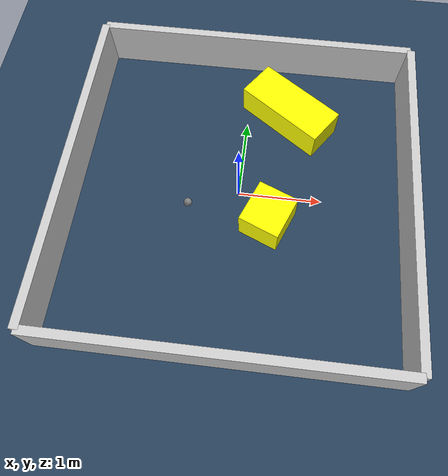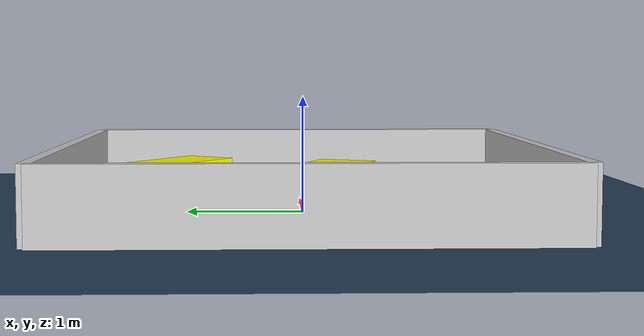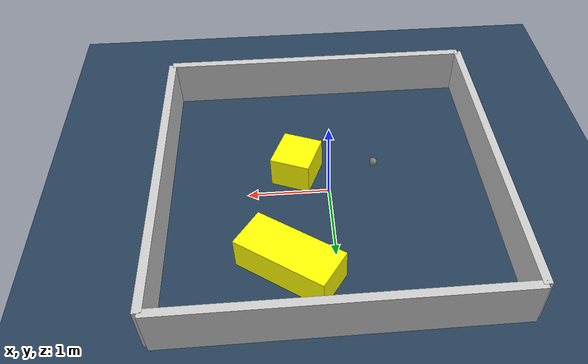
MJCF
<?xml version="1.0" ?>
<mujoco model="generated_environment">
  <option timestep="0.01" integrator="RK4" cone="elliptic"/>
  <default>
    <geom density="1"/>
  </default>
  <asset>
    <texture builtin="gradient" height="3072" rgb1="0.3 0.5 0.7" rgb2="0 0 0" type="skybox" width="512"/>
    <texture builtin="checker" height="300" mark="edge" markrgb="0.8 0.8 0.8" name="groundplane" rgb1="0.2 0.3 0.4" rgb2="0.1 0.2 0.3" type="2d" width="300"/>
    <material name="groundplane" reflectance="0.2" texrepeat="5 5" texture="groundplane" texuniform="true"/>
    <material name="robot" rgba="0.0 1.0 0.0 1"/>
  </asset>
  <worldbody>
    <light dir="0 0 -1" directional="true" pos="0 0 1.5"/>
    <geom condim="4" friction="1.0 0.005 0.001" material="groundplane" name="floor" size="0 0 0.05" type="plane"/>
    <body name="walls">
      <geom name="wall_1" condim="4" pos="-2.0 0.0 0.3" rgba="0.800000011920929 0.800000011920929 0.800000011920929 1.0" size="0.05 2.0 0.3" type="box"/>
      <geom name="wall_2" condim="4" pos="2.0 0.0 0.3" rgba="0.800000011920929 0.800000011920929 0.800000011920929 1.0" size="0.05 2.0 0.3" type="box"/>
      <geom name="wall_3" condim="4" pos="0.0 -2.0 0.3" rgba="0.800000011920929 0.800000011920929 0.800000011920929 1.0" size="2.0 0.05 0.3" type="box"/>
      <geom name="wall_4" condim="4" pos="0.0 2.0 0.3" rgba="0.800000011920929 0.800000011920929 0.800000011920929 1.0" size="2.0 0.05 0.3" type="box"/>
    </body>
    <body name="robot">
      <joint name="joint_x" type="slide" pos="0 0 0" axis="1 0 0"/>
      <joint name="joint_y" type="slide" pos="0 0 0" axis="0 1 0"/>
      <geom name="robot" type="sphere" pos="-0.5799572249590292 -0.26997399560948887 0.2" size="0.05" mass="5." friction="1.0 0.005 0.0001" condim="4"/>
      <site name="sensor_ball"/>
    </body>
    <body name="obstacle_1_movable">
      <geom name="obstacle_1_movable" condim="4" pos="0.3773267723566427 -0.33890208487420725 0.2" euler="0 0 337.6293474218528" friction="1.0 0.005 0.001" rgba="1 1 0 1" size="0.24657549841881055 0.2638413049307162 0.2" type="box" mass="0.1"/>
      <joint type="free"/>
    </body>
    <body name="obstacle_2_movable">
      <geom name="obstacle_2_movable" condim="4" pos="0.5245513131687038 1.1723530669496736 0.2" euler="0 0 325.0014504693106" friction="1.0 0.005 0.001" rgba="1 1 0 1" size="0.5754940175012566 0.2479096685247536 0.2" type="box" mass="0.1"/>
      <joint type="free"/>
    </body>
  </worldbody>
  <actuator>
    <motor name="actuator_x" joint="joint_x" gear="1" ctrlrange="-1 1"/>
    <motor name="actuator_y" joint="joint_y" gear="1" ctrlrange="-1 1"/>
  </actuator>
</mujoco>
